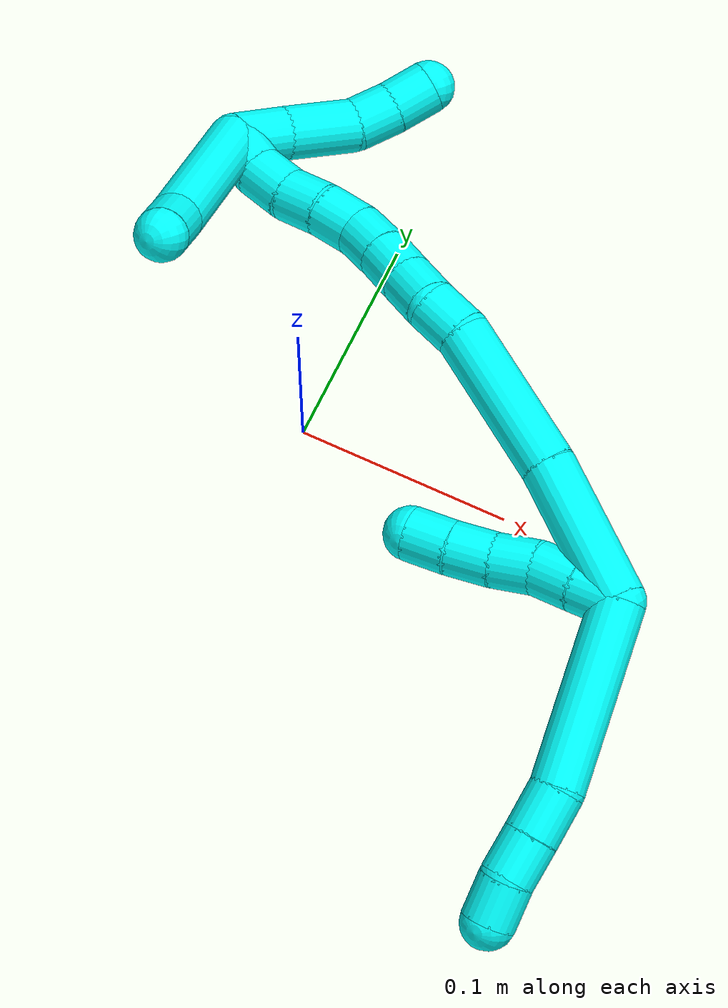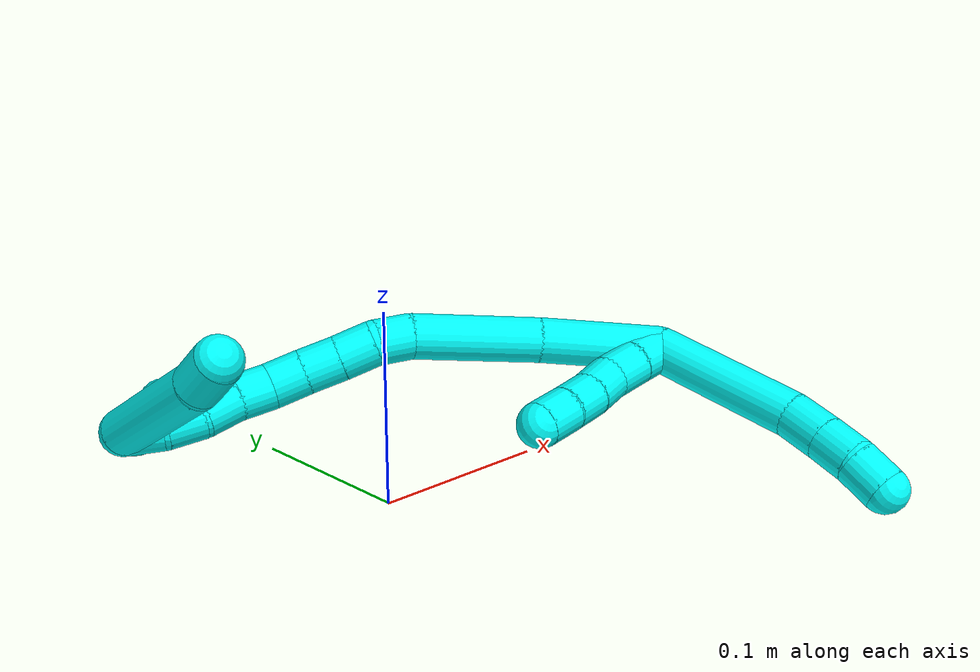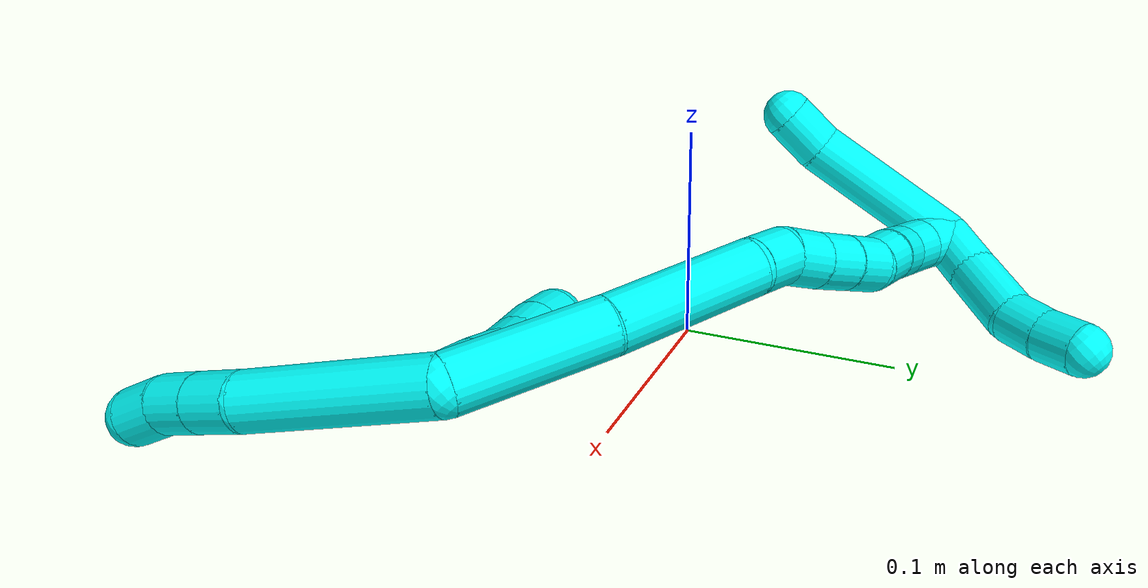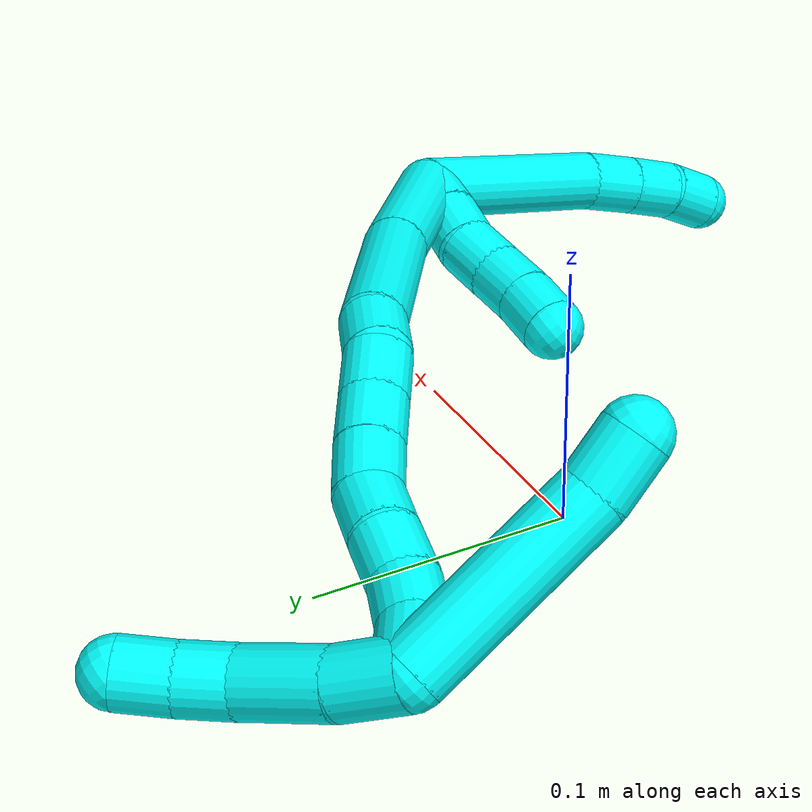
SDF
<sdf version="1.7">
 <world name="default">
  <model name="3">
   <static>0</static>
   <link name="3">
    <collision name="collision-cylinder-e_1_2_8">
     <pose>-0.009443 -0.033731 0.024603 0.940615 -0.222423 -0.113416</pose>
     <geometry><cylinder><radius>0.0125</radius><length>0.08561</length></cylinder></geometry>
     <surface>
      <friction><ode><mu>1.16</mu><mu2>1.16</mu2><slip1>0</slip1><slip2>0</slip2></ode></friction>
      <contact><ode><kp>1e+06</kp><kd>1</kd><max_vel>0</max_vel><min_depth>0.001</min_depth></ode></contact>
     </surface>
    </collision>
    <visual name="visual-cylinder-e_1_2_8">
     <pose>-0.009443 -0.033731 0.024603 0.940615 -0.222423 -0.113416</pose>
     <geometry><cylinder><radius>0.0125</radius><length>0.08561</length></cylinder></geometry>
     <material><ambient>0.003922 1 0.996078 1</ambient></material>
    </visual>
    <collision name="collision-cylinder-e_2_8_9">
     <pose>-0.023606 -0.075681 0.055848 0.891112 -0.420162 -0.202969</pose>
     <geometry><cylinder><radius>0.0125</radius><length>0.023148</length></cylinder></geometry>
     <surface>
      <friction><ode><mu>1.16</mu><mu2>1.16</mu2><slip1>0</slip1><slip2>0</slip2></ode></friction>
      <contact><ode><kp>1e+06</kp><kd>1</kd><max_vel>0</max_vel><min_depth>0.001</min_depth></ode></contact>
     </surface>
    </collision>
    <visual name="visual-cylinder-e_2_8_9">
     <pose>-0.023606 -0.075681 0.055848 0.891112 -0.420162 -0.202969</pose>
     <geometry><cylinder><radius>0.0125</radius><length>0.023148</length></cylinder></geometry>
     <material><ambient>0.003922 1 0.996078 1</ambient></material>
    </visual>
    <collision name="collision-cylinder-e_3_9_10">
     <pose>-0.032809 -0.091236 0.068315 0.899804 -0.446244 -0.218285</pose>
     <geometry><cylinder><radius>0.0125</radius><length>0.020768</length></cylinder></geometry>
     <surface>
      <friction><ode><mu>1.16</mu><mu2>1.16</mu2><slip1>0</slip1><slip2>0</slip2></ode></friction>
      <contact><ode><kp>1e+06</kp><kd>1</kd><max_vel>0</max_vel><min_depth>0.001</min_depth></ode></contact>
     </surface>
    </collision>
    <visual name="visual-cylinder-e_3_9_10">
     <pose>-0.032809 -0.091236 0.068315 0.899804 -0.446244 -0.218285</pose>
     <geometry><cylinder><radius>0.0125</radius><length>0.020768</length></cylinder></geometry>
     <material><ambient>0.003922 1 0.996078 1</ambient></material>
    </visual>
    <collision name="collision-cylinder-e_4_10_6">
     <pose>-0.041725 -0.106939 0.078031 1.13536 -0.447981 -0.288533</pose>
     <geometry><cylinder><radius>0.0125</radius><length>0.020474</length></cylinder></geometry>
     <surface>
      <friction><ode><mu>1.16</mu><mu2>1.16</mu2><slip1>0</slip1><slip2>0</slip2></ode></friction>
      <contact><ode><kp>1e+06</kp><kd>1</kd><max_vel>0</max_vel><min_depth>0.001</min_depth></ode></contact>
     </surface>
    </collision>
    <visual name="visual-cylinder-e_4_10_6">
     <pose>-0.041725 -0.106939 0.078031 1.13536 -0.447981 -0.288533</pose>
     <geometry><cylinder><radius>0.0125</radius><length>0.020474</length></cylinder></geometry>
     <material><ambient>0.003922 1 0.996078 1</ambient></material>
    </visual>
    <collision name="collision-cylinder-e_1_2_11">
     <pose>-0.009066 0.004212 0.000262 -1.50873 -1.13515 1.0796</pose>
     <geometry><cylinder><radius>0.0125</radius><length>0.02</length></cylinder></geometry>
     <surface>
      <friction><ode><mu>1.16</mu><mu2>1.16</mu2><slip1>0</slip1><slip2>0</slip2></ode></friction>
      <contact><ode><kp>1e+06</kp><kd>1</kd><max_vel>0</max_vel><min_depth>0.001</min_depth></ode></contact>
     </surface>
    </collision>
    <visual name="visual-cylinder-e_1_2_11">
     <pose>-0.009066 0.004212 0.000262 -1.50873 -1.13515 1.0796</pose>
     <geometry><cylinder><radius>0.0125</radius><length>0.02</length></cylinder></geometry>
     <material><ambient>0.003922 1 0.996078 1</ambient></material>
    </visual>
    <collision name="collision-cylinder-e_2_11_12">
     <pose>-0.027242 0.012539 0.000263 -1.63402 -1.14578 1.20414</pose>
     <geometry><cylinder><radius>0.0125</radius><length>0.02</length></cylinder></geometry>
     <surface>
      <friction><ode><mu>1.16</mu><mu2>1.16</mu2><slip1>0</slip1><slip2>0</slip2></ode></friction>
      <contact><ode><kp>1e+06</kp><kd>1</kd><max_vel>0</max_vel><min_depth>0.001</min_depth></ode></contact>
     </surface>
    </collision>
    <visual name="visual-cylinder-e_2_11_12">
     <pose>-0.027242 0.012539 0.000263 -1.63402 -1.14578 1.20414</pose>
     <geometry><cylinder><radius>0.0125</radius><length>0.02</length></cylinder></geometry>
     <material><ambient>0.003922 1 0.996078 1</ambient></material>
    </visual>
    <collision name="collision-cylinder-e_3_12_13">
     <pose>-0.045797 0.019409 0.001796 -0.993605 -1.23579 0.735598</pose>
     <geometry><cylinder><radius>0.0125</radius><length>0.02</length></cylinder></geometry>
     <surface>
      <friction><ode><mu>1.16</mu><mu2>1.16</mu2><slip1>0</slip1><slip2>0</slip2></ode></friction>
      <contact><ode><kp>1e+06</kp><kd>1</kd><max_vel>0</max_vel><min_depth>0.001</min_depth></ode></contact>
     </surface>
    </collision>
    <visual name="visual-cylinder-e_3_12_13">
     <pose>-0.045797 0.019409 0.001796 -0.993605 -1.23579 0.735598</pose>
     <geometry><cylinder><radius>0.0125</radius><length>0.02</length></cylinder></geometry>
     <material><ambient>0.003922 1 0.996078 1</ambient></material>
    </visual>
    <collision name="collision-cylinder-e_4_13_14">
     <pose>-0.064332 0.025922 0.005386 -1.12502 -1.14126 0.769036</pose>
     <geometry><cylinder><radius>0.0125</radius><length>0.02</length></cylinder></geometry>
     <surface>
      <friction><ode><mu>1.16</mu><mu2>1.16</mu2><slip1>0</slip1><slip2>0</slip2></ode></friction>
      <contact><ode><kp>1e+06</kp><kd>1</kd><max_vel>0</max_vel><min_depth>0.001</min_depth></ode></contact>
     </surface>
    </collision>
    <visual name="visual-cylinder-e_4_13_14">
     <pose>-0.064332 0.025922 0.005386 -1.12502 -1.14126 0.769036</pose>
     <geometry><cylinder><radius>0.0125</radius><length>0.02</length></cylinder></geometry>
     <material><ambient>0.003922 1 0.996078 1</ambient></material>
    </visual>
    <collision name="collision-cylinder-e_5_14_5">
     <pose>-0.082524 0.033717 0.008124 -1.34148 -1.14321 0.943832</pose>
     <geometry><cylinder><radius>0.0125</radius><length>0.02</length></cylinder></geometry>
     <surface>
      <friction><ode><mu>1.16</mu><mu2>1.16</mu2><slip1>0</slip1><slip2>0</slip2></ode></friction>
      <contact><ode><kp>1e+06</kp><kd>1</kd><max_vel>0</max_vel><min_depth>0.001</min_depth></ode></contact>
     </surface>
    </collision>
    <visual name="visual-cylinder-e_5_14_5">
     <pose>-0.082524 0.033717 0.008124 -1.34148 -1.14321 0.943832</pose>
     <geometry><cylinder><radius>0.0125</radius><length>0.02</length></cylinder></geometry>
     <material><ambient>0.003922 1 0.996078 1</ambient></material>
    </visual>
    <collision name="collision-cylinder-e_1_2_15">
     <pose>-0.015937 0.028645 -0.00894 -1.87333 -0.488225 0.653093</pose>
     <geometry><cylinder><radius>0.0125</radius><length>0.067955</length></cylinder></geometry>
     <surface>
      <friction><ode><mu>1.16</mu><mu2>1.16</mu2><slip1>0</slip1><slip2>0</slip2></ode></friction>
      <contact><ode><kp>1e+06</kp><kd>1</kd><max_vel>0</max_vel><min_depth>0.001</min_depth></ode></contact>
     </surface>
    </collision>
    <visual name="visual-cylinder-e_1_2_15">
     <pose>-0.015937 0.028645 -0.00894 -1.87333 -0.488225 0.653093</pose>
     <geometry><cylinder><radius>0.0125</radius><length>0.067955</length></cylinder></geometry>
     <material><ambient>0.003922 1 0.996078 1</ambient></material>
    </visual>
    <collision name="collision-cylinder-e_2_15_16">
     <pose>-0.05106 0.086392 -0.025081 -1.81333 -0.569273 0.715414</pose>
     <geometry><cylinder><radius>0.0125</radius><length>0.071185</length></cylinder></geometry>
     <surface>
      <friction><ode><mu>1.16</mu><mu2>1.16</mu2><slip1>0</slip1><slip2>0</slip2></ode></friction>
      <contact><ode><kp>1e+06</kp><kd>1</kd><max_vel>0</max_vel><min_depth>0.001</min_depth></ode></contact>
     </surface>
    </collision>
    <visual name="visual-cylinder-e_2_15_16">
     <pose>-0.05106 0.086392 -0.025081 -1.81333 -0.569273 0.715414</pose>
     <geometry><cylinder><radius>0.0125</radius><length>0.071185</length></cylinder></geometry>
     <material><ambient>0.003922 1 0.996078 1</ambient></material>
    </visual>
    <collision name="collision-cylinder-e_3_16_17">
     <pose>-0.077732 0.122262 -0.033775 -1.78809 -0.823951 0.996419</pose>
     <geometry><cylinder><radius>0.0125</radius><length>0.020405</length></cylinder></geometry>
     <surface>
      <friction><ode><mu>1.16</mu><mu2>1.16</mu2><slip1>0</slip1><slip2>0</slip2></ode></friction>
      <contact><ode><kp>1e+06</kp><kd>1</kd><max_vel>0</max_vel><min_depth>0.001</min_depth></ode></contact>
     </surface>
    </collision>
    <visual name="visual-cylinder-e_3_16_17">
     <pose>-0.077732 0.122262 -0.033775 -1.78809 -0.823951 0.996419</pose>
     <geometry><cylinder><radius>0.0125</radius><length>0.020405</length></cylinder></geometry>
     <material><ambient>0.003922 1 0.996078 1</ambient></material>
    </visual>
    <collision name="collision-cylinder-e_4_17_18">
     <pose>-0.09276 0.134092 -0.03972 -2.29207 -0.8414 1.55994</pose>
     <geometry><cylinder><radius>0.0125</radius><length>0.02023</length></cylinder></geometry>
     <surface>
      <friction><ode><mu>1.16</mu><mu2>1.16</mu2><slip1>0</slip1><slip2>0</slip2></ode></friction>
      <contact><ode><kp>1e+06</kp><kd>1</kd><max_vel>0</max_vel><min_depth>0.001</min_depth></ode></contact>
     </surface>
    </collision>
    <visual name="visual-cylinder-e_4_17_18">
     <pose>-0.09276 0.134092 -0.03972 -2.29207 -0.8414 1.55994</pose>
     <geometry><cylinder><radius>0.0125</radius><length>0.02023</length></cylinder></geometry>
     <material><ambient>0.003922 1 0.996078 1</ambient></material>
    </visual>
    <collision name="collision-cylinder-e_5_18_19">
     <pose>-0.10771 0.144499 -0.048316 -2.23035 -0.830831 1.46581</pose>
     <geometry><cylinder><radius>0.0125</radius><length>0.020062</length></cylinder></geometry>
     <surface>
      <friction><ode><mu>1.16</mu><mu2>1.16</mu2><slip1>0</slip1><slip2>0</slip2></ode></friction>
      <contact><ode><kp>1e+06</kp><kd>1</kd><max_vel>0</max_vel><min_depth>0.001</min_depth></ode></contact>
     </surface>
    </collision>
    <visual name="visual-cylinder-e_5_18_19">
     <pose>-0.10771 0.144499 -0.048316 -2.23035 -0.830831 1.46581</pose>
     <geometry><cylinder><radius>0.0125</radius><length>0.020062</length></cylinder></geometry>
     <material><ambient>0.003922 1 0.996078 1</ambient></material>
    </visual>
    <collision name="collision-cylinder-e_6_19_20">
     <pose>-0.122897 0.154939 -0.056284 -2.21453 -0.88468 1.51696</pose>
     <geometry><cylinder><radius>0.0125</radius><length>0.020108</length></cylinder></geometry>
     <surface>
      <friction><ode><mu>1.16</mu><mu2>1.16</mu2><slip1>0</slip1><slip2>0</slip2></ode></friction>
      <contact><ode><kp>1e+06</kp><kd>1</kd><max_vel>0</max_vel><min_depth>0.001</min_depth></ode></contact>
     </surface>
    </collision>
    <visual name="visual-cylinder-e_6_19_20">
     <pose>-0.122897 0.154939 -0.056284 -2.21453 -0.88468 1.51696</pose>
     <geometry><cylinder><radius>0.0125</radius><length>0.020108</length></cylinder></geometry>
     <material><ambient>0.003922 1 0.996078 1</ambient></material>
    </visual>
    <collision name="collision-cylinder-e_7_20_21">
     <pose>-0.139082 0.165437 -0.060631 -1.6676 -0.997371 1.0809</pose>
     <geometry><cylinder><radius>0.0125</radius><length>0.020014</length></cylinder></geometry>
     <surface>
      <friction><ode><mu>1.16</mu><mu2>1.16</mu2><slip1>0</slip1><slip2>0</slip2></ode></friction>
      <contact><ode><kp>1e+06</kp><kd>1</kd><max_vel>0</max_vel><min_depth>0.001</min_depth></ode></contact>
     </surface>
    </collision>
    <visual name="visual-cylinder-e_7_20_21">
     <pose>-0.139082 0.165437 -0.060631 -1.6676 -0.997371 1.0809</pose>
     <geometry><cylinder><radius>0.0125</radius><length>0.020014</length></cylinder></geometry>
     <material><ambient>0.003922 1 0.996078 1</ambient></material>
    </visual>
    <collision name="collision-cylinder-e_8_21_22">
     <pose>-0.156555 0.175027 -0.061954 -1.75919 -1.13132 1.309</pose>
     <geometry><cylinder><radius>0.0125</radius><length>0.020036</length></cylinder></geometry>
     <surface>
      <friction><ode><mu>1.16</mu><mu2>1.16</mu2><slip1>0</slip1><slip2>0</slip2></ode></friction>
      <contact><ode><kp>1e+06</kp><kd>1</kd><max_vel>0</max_vel><min_depth>0.001</min_depth></ode></contact>
     </surface>
    </collision>
    <visual name="visual-cylinder-e_8_21_22">
     <pose>-0.156555 0.175027 -0.061954 -1.75919 -1.13132 1.309</pose>
     <geometry><cylinder><radius>0.0125</radius><length>0.020036</length></cylinder></geometry>
     <material><ambient>0.003922 1 0.996078 1</ambient></material>
    </visual>
    <collision name="collision-cylinder-e_9_22_23">
     <pose>-0.173584 0.185074 -0.064258 -1.82232 -0.921073 1.13823</pose>
     <geometry><cylinder><radius>0.0125</radius><length>0.020002</length></cylinder></geometry>
     <surface>
      <friction><ode><mu>1.16</mu><mu2>1.16</mu2><slip1>0</slip1><slip2>0</slip2></ode></friction>
      <contact><ode><kp>1e+06</kp><kd>1</kd><max_vel>0</max_vel><min_depth>0.001</min_depth></ode></contact>
     </surface>
    </collision>
    <visual name="visual-cylinder-e_9_22_23">
     <pose>-0.173584 0.185074 -0.064258 -1.82232 -0.921073 1.13823</pose>
     <geometry><cylinder><radius>0.0125</radius><length>0.020002</length></cylinder></geometry>
     <material><ambient>0.003922 1 0.996078 1</ambient></material>
    </visual>
    <collision name="collision-cylinder-e_10_23_1">
     <pose>-0.187989 0.198126 -0.068375 -1.91911 -0.69976 0.960146</pose>
     <geometry><cylinder><radius>0.0125</radius><length>0.020002</length></cylinder></geometry>
     <surface>
      <friction><ode><mu>1.16</mu><mu2>1.16</mu2><slip1>0</slip1><slip2>0</slip2></ode></friction>
      <contact><ode><kp>1e+06</kp><kd>1</kd><max_vel>0</max_vel><min_depth>0.001</min_depth></ode></contact>
     </surface>
    </collision>
    <visual name="visual-cylinder-e_10_23_1">
     <pose>-0.187989 0.198126 -0.068375 -1.91911 -0.69976 0.960146</pose>
     <geometry><cylinder><radius>0.0125</radius><length>0.020002</length></cylinder></geometry>
     <material><ambient>0.003922 1 0.996078 1</ambient></material>
    </visual>
    <collision name="collision-cylinder-e_1_1_24">
     <pose>-0.188769 0.196085 -0.033785 0.243234 0.14663 0.017953</pose>
     <geometry><cylinder><radius>0.0125</radius><length>0.077492</length></cylinder></geometry>
     <surface>
      <friction><ode><mu>1.16</mu><mu2>1.16</mu2><slip1>0</slip1><slip2>0</slip2></ode></friction>
      <contact><ode><kp>1e+06</kp><kd>1</kd><max_vel>0</max_vel><min_depth>0.001</min_depth></ode></contact>
     </surface>
    </collision>
    <visual name="visual-cylinder-e_1_1_24">
     <pose>-0.188769 0.196085 -0.033785 0.243234 0.14663 0.017953</pose>
     <geometry><cylinder><radius>0.0125</radius><length>0.077492</length></cylinder></geometry>
     <material><ambient>0.003922 1 0.996078 1</ambient></material>
    </visual>
    <collision name="collision-cylinder-e_2_24_4">
     <pose>-0.179812 0.185965 0.014141 0.082673 0.297158 0.012382</pose>
     <geometry><cylinder><radius>0.0125</radius><length>0.022508</length></cylinder></geometry>
     <surface>
      <friction><ode><mu>1.16</mu><mu2>1.16</mu2><slip1>0</slip1><slip2>0</slip2></ode></friction>
      <contact><ode><kp>1e+06</kp><kd>1</kd><max_vel>0</max_vel><min_depth>0.001</min_depth></ode></contact>
     </surface>
    </collision>
    <visual name="visual-cylinder-e_2_24_4">
     <pose>-0.179812 0.185965 0.014141 0.082673 0.297158 0.012382</pose>
     <geometry><cylinder><radius>0.0125</radius><length>0.022508</length></cylinder></geometry>
     <material><ambient>0.003922 1 0.996078 1</ambient></material>
    </visual>
    <collision name="collision-cylinder-e_1_1_25">
     <pose>-0.188221 0.20355 -0.08196 2.98195 0.50944 2.54547</pose>
     <geometry><cylinder><radius>0.0125</radius><length>0.025462</length></cylinder></geometry>
     <surface>
      <friction><ode><mu>1.16</mu><mu2>1.16</mu2><slip1>0</slip1><slip2>0</slip2></ode></friction>
      <contact><ode><kp>1e+06</kp><kd>1</kd><max_vel>0</max_vel><min_depth>0.001</min_depth></ode></contact>
     </surface>
    </collision>
    <visual name="visual-cylinder-e_1_1_25">
     <pose>-0.188221 0.20355 -0.08196 2.98195 0.50944 2.54547</pose>
     <geometry><cylinder><radius>0.0125</radius><length>0.025462</length></cylinder></geometry>
     <material><ambient>0.003922 1 0.996078 1</ambient></material>
    </visual>
    <collision name="collision-cylinder-e_2_25_26">
     <pose>-0.171639 0.199354 -0.106428 2.96348 0.647676 2.62158</pose>
     <geometry><cylinder><radius>0.0125</radius><length>0.034387</length></cylinder></geometry>
     <surface>
      <friction><ode><mu>1.16</mu><mu2>1.16</mu2><slip1>0</slip1><slip2>0</slip2></ode></friction>
      <contact><ode><kp>1e+06</kp><kd>1</kd><max_vel>0</max_vel><min_depth>0.001</min_depth></ode></contact>
     </surface>
    </collision>
    <visual name="visual-cylinder-e_2_25_26">
     <pose>-0.171639 0.199354 -0.106428 2.96348 0.647676 2.62158</pose>
     <geometry><cylinder><radius>0.0125</radius><length>0.034387</length></cylinder></geometry>
     <material><ambient>0.003922 1 0.996078 1</ambient></material>
    </visual>
    <collision name="collision-cylinder-e_3_26_27">
     <pose>-0.154896 0.198622 -0.127485 -2.92083 0.687884 -2.54141</pose>
     <geometry><cylinder><radius>0.0125</radius><length>0.020065</length></cylinder></geometry>
     <surface>
      <friction><ode><mu>1.16</mu><mu2>1.16</mu2><slip1>0</slip1><slip2>0</slip2></ode></friction>
      <contact><ode><kp>1e+06</kp><kd>1</kd><max_vel>0</max_vel><min_depth>0.001</min_depth></ode></contact>
     </surface>
    </collision>
    <visual name="visual-cylinder-e_3_26_27">
     <pose>-0.154896 0.198622 -0.127485 -2.92083 0.687884 -2.54141</pose>
     <geometry><cylinder><radius>0.0125</radius><length>0.020065</length></cylinder></geometry>
     <material><ambient>0.003922 1 0.996078 1</ambient></material>
    </visual>
    <collision name="collision-cylinder-e_4_27_3">
     <pose>-0.141915 0.203 -0.142117 -2.77909 0.718501 -2.23362</pose>
     <geometry><cylinder><radius>0.0125</radius><length>0.020086</length></cylinder></geometry>
     <surface>
      <friction><ode><mu>1.16</mu><mu2>1.16</mu2><slip1>0</slip1><slip2>0</slip2></ode></friction>
      <contact><ode><kp>1e+06</kp><kd>1</kd><max_vel>0</max_vel><min_depth>0.001</min_depth></ode></contact>
     </surface>
    </collision>
    <visual name="visual-cylinder-e_4_27_3">
     <pose>-0.141915 0.203 -0.142117 -2.77909 0.718501 -2.23362</pose>
     <geometry><cylinder><radius>0.0125</radius><length>0.020086</length></cylinder></geometry>
     <material><ambient>0.003922 1 0.996078 1</ambient></material>
    </visual>
    <collision name="collision-sphere-3">
     <pose>-0.135304 0.205681 -0.149186 0 -0 0</pose>
     <geometry><sphere><radius>0.0125</radius></sphere></geometry>
     <surface>
      <friction><ode><mu>1.16</mu><mu2>1.16</mu2><slip1>0</slip1><slip2>0</slip2></ode></friction>
      <contact><ode><kp>1e+06</kp><kd>1</kd><max_vel>0</max_vel><min_depth>0.001</min_depth></ode></contact>
     </surface>
    </collision>
    <visual name="visual-sphere-3">
     <pose>-0.135304 0.205681 -0.149186 0 -0 0</pose>
     <geometry><sphere><radius>0.0125</radius></sphere></geometry>
     <material><ambient>0.003922 1 0.996078 1</ambient></material>
    </visual>
    <collision name="collision-sphere-27">
     <pose>-0.148526 0.200319 -0.135048 0 -0 0</pose>
     <geometry><sphere><radius>0.0125</radius></sphere></geometry>
     <surface>
      <friction><ode><mu>1.16</mu><mu2>1.16</mu2><slip1>0</slip1><slip2>0</slip2></ode></friction>
      <contact><ode><kp>1e+06</kp><kd>1</kd><max_vel>0</max_vel><min_depth>0.001</min_depth></ode></contact>
     </surface>
    </collision>
    <visual name="visual-sphere-27">
     <pose>-0.148526 0.200319 -0.135048 0 -0 0</pose>
     <geometry><sphere><radius>0.0125</radius></sphere></geometry>
     <material><ambient>0.003922 1 0.996078 1</ambient></material>
    </visual>
    <collision name="collision-sphere-26">
     <pose>-0.161265 0.196925 -0.119922 0 -0 0</pose>
     <geometry><sphere><radius>0.0125</radius></sphere></geometry>
     <surface>
      <friction><ode><mu>1.16</mu><mu2>1.16</mu2><slip1>0</slip1><slip2>0</slip2></ode></friction>
      <contact><ode><kp>1e+06</kp><kd>1</kd><max_vel>0</max_vel><min_depth>0.001</min_depth></ode></contact>
     </surface>
    </collision>
    <visual name="visual-sphere-26">
     <pose>-0.161265 0.196925 -0.119922 0 -0 0</pose>
     <geometry><sphere><radius>0.0125</radius></sphere></geometry>
     <material><ambient>0.003922 1 0.996078 1</ambient></material>
    </visual>
    <collision name="collision-sphere-25">
     <pose>-0.182012 0.201783 -0.092933 0 -0 0</pose>
     <geometry><sphere><radius>0.0125</radius></sphere></geometry>
     <surface>
      <friction><ode><mu>1.16</mu><mu2>1.16</mu2><slip1>0</slip1><slip2>0</slip2></ode></friction>
      <contact><ode><kp>1e+06</kp><kd>1</kd><max_vel>0</max_vel><min_depth>0.001</min_depth></ode></contact>
     </surface>
    </collision>
    <visual name="visual-sphere-25">
     <pose>-0.182012 0.201783 -0.092933 0 -0 0</pose>
     <geometry><sphere><radius>0.0125</radius></sphere></geometry>
     <material><ambient>0.003922 1 0.996078 1</ambient></material>
    </visual>
    <collision name="collision-sphere-4">
     <pose>-0.176517 0.185077 0.024865 0 -0 0</pose>
     <geometry><sphere><radius>0.0125</radius></sphere></geometry>
     <surface>
      <friction><ode><mu>1.16</mu><mu2>1.16</mu2><slip1>0</slip1><slip2>0</slip2></ode></friction>
      <contact><ode><kp>1e+06</kp><kd>1</kd><max_vel>0</max_vel><min_depth>0.001</min_depth></ode></contact>
     </surface>
    </collision>
    <visual name="visual-sphere-4">
     <pose>-0.176517 0.185077 0.024865 0 -0 0</pose>
     <geometry><sphere><radius>0.0125</radius></sphere></geometry>
     <material><ambient>0.003922 1 0.996078 1</ambient></material>
    </visual>
    <collision name="collision-sphere-24">
     <pose>-0.183108 0.186854 0.003418 0 -0 0</pose>
     <geometry><sphere><radius>0.0125</radius></sphere></geometry>
     <surface>
      <friction><ode><mu>1.16</mu><mu2>1.16</mu2><slip1>0</slip1><slip2>0</slip2></ode></friction>
      <contact><ode><kp>1e+06</kp><kd>1</kd><max_vel>0</max_vel><min_depth>0.001</min_depth></ode></contact>
     </surface>
    </collision>
    <visual name="visual-sphere-24">
     <pose>-0.183108 0.186854 0.003418 0 -0 0</pose>
     <geometry><sphere><radius>0.0125</radius></sphere></geometry>
     <material><ambient>0.003922 1 0.996078 1</ambient></material>
    </visual>
    <collision name="collision-sphere-1">
     <pose>-0.19443 0.205317 -0.070987 0 -0 0</pose>
     <geometry><sphere><radius>0.0125</radius></sphere></geometry>
     <surface>
      <friction><ode><mu>1.16</mu><mu2>1.16</mu2><slip1>0</slip1><slip2>0</slip2></ode></friction>
      <contact><ode><kp>1e+06</kp><kd>1</kd><max_vel>0</max_vel><min_depth>0.001</min_depth></ode></contact>
     </surface>
    </collision>
    <visual name="visual-sphere-1">
     <pose>-0.19443 0.205317 -0.070987 0 -0 0</pose>
     <geometry><sphere><radius>0.0125</radius></sphere></geometry>
     <material><ambient>0.003922 1 0.996078 1</ambient></material>
    </visual>
    <collision name="collision-sphere-23">
     <pose>-0.181548 0.190934 -0.065764 0 -0 0</pose>
     <geometry><sphere><radius>0.0125</radius></sphere></geometry>
     <surface>
      <friction><ode><mu>1.16</mu><mu2>1.16</mu2><slip1>0</slip1><slip2>0</slip2></ode></friction>
      <contact><ode><kp>1e+06</kp><kd>1</kd><max_vel>0</max_vel><min_depth>0.001</min_depth></ode></contact>
     </surface>
    </collision>
    <visual name="visual-sphere-23">
     <pose>-0.181548 0.190934 -0.065764 0 -0 0</pose>
     <geometry><sphere><radius>0.0125</radius></sphere></geometry>
     <material><ambient>0.003922 1 0.996078 1</ambient></material>
    </visual>
    <collision name="collision-sphere-22">
     <pose>-0.165621 0.179215 -0.062753 0 -0 0</pose>
     <geometry><sphere><radius>0.0125</radius></sphere></geometry>
     <surface>
      <friction><ode><mu>1.16</mu><mu2>1.16</mu2><slip1>0</slip1><slip2>0</slip2></ode></friction>
      <contact><ode><kp>1e+06</kp><kd>1</kd><max_vel>0</max_vel><min_depth>0.001</min_depth></ode></contact>
     </surface>
    </collision>
    <visual name="visual-sphere-22">
     <pose>-0.165621 0.179215 -0.062753 0 -0 0</pose>
     <geometry><sphere><radius>0.0125</radius></sphere></geometry>
     <material><ambient>0.003922 1 0.996078 1</ambient></material>
    </visual>
    <collision name="collision-sphere-21">
     <pose>-0.147488 0.17084 -0.061156 0 -0 0</pose>
     <geometry><sphere><radius>0.0125</radius></sphere></geometry>
     <surface>
      <friction><ode><mu>1.16</mu><mu2>1.16</mu2><slip1>0</slip1><slip2>0</slip2></ode></friction>
      <contact><ode><kp>1e+06</kp><kd>1</kd><max_vel>0</max_vel><min_depth>0.001</min_depth></ode></contact>
     </surface>
    </collision>
    <visual name="visual-sphere-21">
     <pose>-0.147488 0.17084 -0.061156 0 -0 0</pose>
     <geometry><sphere><radius>0.0125</radius></sphere></geometry>
     <material><ambient>0.003922 1 0.996078 1</ambient></material>
    </visual>
    <collision name="collision-sphere-11">
     <pose>-0.018132 0.008424 0.000523 0 -0 0</pose>
     <geometry><sphere><radius>0.0125</radius></sphere></geometry>
     <surface>
      <friction><ode><mu>1.16</mu><mu2>1.16</mu2><slip1>0</slip1><slip2>0</slip2></ode></friction>
      <contact><ode><kp>1e+06</kp><kd>1</kd><max_vel>0</max_vel><min_depth>0.001</min_depth></ode></contact>
     </surface>
    </collision>
    <visual name="visual-sphere-11">
     <pose>-0.018132 0.008424 0.000523 0 -0 0</pose>
     <geometry><sphere><radius>0.0125</radius></sphere></geometry>
     <material><ambient>0.003922 1 0.996078 1</ambient></material>
    </visual>
    <collision name="collision-sphere-6">
     <pose>-0.046159 -0.115305 0.081923 0 -0 0</pose>
     <geometry><sphere><radius>0.0125</radius></sphere></geometry>
     <surface>
      <friction><ode><mu>1.16</mu><mu2>1.16</mu2><slip1>0</slip1><slip2>0</slip2></ode></friction>
      <contact><ode><kp>1e+06</kp><kd>1</kd><max_vel>0</max_vel><min_depth>0.001</min_depth></ode></contact>
     </surface>
    </collision>
    <visual name="visual-sphere-6">
     <pose>-0.046159 -0.115305 0.081923 0 -0 0</pose>
     <geometry><sphere><radius>0.0125</radius></sphere></geometry>
     <material><ambient>0.003922 1 0.996078 1</ambient></material>
    </visual>
    <collision name="collision-sphere-10">
     <pose>-0.03729 -0.098573 0.074139 0 -0 0</pose>
     <geometry><sphere><radius>0.0125</radius></sphere></geometry>
     <surface>
      <friction><ode><mu>1.16</mu><mu2>1.16</mu2><slip1>0</slip1><slip2>0</slip2></ode></friction>
      <contact><ode><kp>1e+06</kp><kd>1</kd><max_vel>0</max_vel><min_depth>0.001</min_depth></ode></contact>
     </surface>
    </collision>
    <visual name="visual-sphere-10">
     <pose>-0.03729 -0.098573 0.074139 0 -0 0</pose>
     <geometry><sphere><radius>0.0125</radius></sphere></geometry>
     <material><ambient>0.003922 1 0.996078 1</ambient></material>
    </visual>
    <collision name="collision-sphere-9">
     <pose>-0.028327 -0.0839 0.06249 0 -0 0</pose>
     <geometry><sphere><radius>0.0125</radius></sphere></geometry>
     <surface>
      <friction><ode><mu>1.16</mu><mu2>1.16</mu2><slip1>0</slip1><slip2>0</slip2></ode></friction>
      <contact><ode><kp>1e+06</kp><kd>1</kd><max_vel>0</max_vel><min_depth>0.001</min_depth></ode></contact>
     </surface>
    </collision>
    <visual name="visual-sphere-9">
     <pose>-0.028327 -0.0839 0.06249 0 -0 0</pose>
     <geometry><sphere><radius>0.0125</radius></sphere></geometry>
     <material><ambient>0.003922 1 0.996078 1</ambient></material>
    </visual>
    <collision name="collision-sphere-2">
     <geometry><sphere><radius>0.0125</radius></sphere></geometry>
     <surface>
      <friction><ode><mu>1.16</mu><mu2>1.16</mu2><slip1>0</slip1><slip2>0</slip2></ode></friction>
      <contact><ode><kp>1e+06</kp><kd>1</kd><max_vel>0</max_vel><min_depth>0.001</min_depth></ode></contact>
     </surface>
    </collision>
    <visual name="visual-sphere-2">
     <geometry><sphere><radius>0.0125</radius></sphere></geometry>
     <material><ambient>0.003922 1 0.996078 1</ambient></material>
    </visual>
    <collision name="collision-sphere-19">
     <pose>-0.115118 0.149844 -0.05246 0 -0 0</pose>
     <geometry><sphere><radius>0.0125</radius></sphere></geometry>
     <surface>
      <friction><ode><mu>1.16</mu><mu2>1.16</mu2><slip1>0</slip1><slip2>0</slip2></ode></friction>
      <contact><ode><kp>1e+06</kp><kd>1</kd><max_vel>0</max_vel><min_depth>0.001</min_depth></ode></contact>
     </surface>
    </collision>
    <visual name="visual-sphere-19">
     <pose>-0.115118 0.149844 -0.05246 0 -0 0</pose>
     <geometry><sphere><radius>0.0125</radius></sphere></geometry>
     <material><ambient>0.003922 1 0.996078 1</ambient></material>
    </visual>
    <collision name="collision-sphere-8">
     <pose>-0.018885 -0.067462 0.049206 0 -0 0</pose>
     <geometry><sphere><radius>0.0125</radius></sphere></geometry>
     <surface>
      <friction><ode><mu>1.16</mu><mu2>1.16</mu2><slip1>0</slip1><slip2>0</slip2></ode></friction>
      <contact><ode><kp>1e+06</kp><kd>1</kd><max_vel>0</max_vel><min_depth>0.001</min_depth></ode></contact>
     </surface>
    </collision>
    <visual name="visual-sphere-8">
     <pose>-0.018885 -0.067462 0.049206 0 -0 0</pose>
     <geometry><sphere><radius>0.0125</radius></sphere></geometry>
     <material><ambient>0.003922 1 0.996078 1</ambient></material>
    </visual>
    <collision name="collision-sphere-12">
     <pose>-0.036353 0.016654 2e-06 0 -0 0</pose>
     <geometry><sphere><radius>0.0125</radius></sphere></geometry>
     <surface>
      <friction><ode><mu>1.16</mu><mu2>1.16</mu2><slip1>0</slip1><slip2>0</slip2></ode></friction>
      <contact><ode><kp>1e+06</kp><kd>1</kd><max_vel>0</max_vel><min_depth>0.001</min_depth></ode></contact>
     </surface>
    </collision>
    <visual name="visual-sphere-12">
     <pose>-0.036353 0.016654 2e-06 0 -0 0</pose>
     <geometry><sphere><radius>0.0125</radius></sphere></geometry>
     <material><ambient>0.003922 1 0.996078 1</ambient></material>
    </visual>
    <collision name="collision-sphere-13">
     <pose>-0.055241 0.022164 0.00359 0 -0 0</pose>
     <geometry><sphere><radius>0.0125</radius></sphere></geometry>
     <surface>
      <friction><ode><mu>1.16</mu><mu2>1.16</mu2><slip1>0</slip1><slip2>0</slip2></ode></friction>
      <contact><ode><kp>1e+06</kp><kd>1</kd><max_vel>0</max_vel><min_depth>0.001</min_depth></ode></contact>
     </surface>
    </collision>
    <visual name="visual-sphere-13">
     <pose>-0.055241 0.022164 0.00359 0 -0 0</pose>
     <geometry><sphere><radius>0.0125</radius></sphere></geometry>
     <material><ambient>0.003922 1 0.996078 1</ambient></material>
    </visual>
    <collision name="collision-sphere-14">
     <pose>-0.073424 0.029679 0.007182 0 -0 0</pose>
     <geometry><sphere><radius>0.0125</radius></sphere></geometry>
     <surface>
      <friction><ode><mu>1.16</mu><mu2>1.16</mu2><slip1>0</slip1><slip2>0</slip2></ode></friction>
      <contact><ode><kp>1e+06</kp><kd>1</kd><max_vel>0</max_vel><min_depth>0.001</min_depth></ode></contact>
     </surface>
    </collision>
    <visual name="visual-sphere-14">
     <pose>-0.073424 0.029679 0.007182 0 -0 0</pose>
     <geometry><sphere><radius>0.0125</radius></sphere></geometry>
     <material><ambient>0.003922 1 0.996078 1</ambient></material>
    </visual>
    <collision name="collision-sphere-5">
     <pose>-0.091623 0.037756 0.009067 0 -0 0</pose>
     <geometry><sphere><radius>0.0125</radius></sphere></geometry>
     <surface>
      <friction><ode><mu>1.16</mu><mu2>1.16</mu2><slip1>0</slip1><slip2>0</slip2></ode></friction>
      <contact><ode><kp>1e+06</kp><kd>1</kd><max_vel>0</max_vel><min_depth>0.001</min_depth></ode></contact>
     </surface>
    </collision>
    <visual name="visual-sphere-5">
     <pose>-0.091623 0.037756 0.009067 0 -0 0</pose>
     <geometry><sphere><radius>0.0125</radius></sphere></geometry>
     <material><ambient>0.003922 1 0.996078 1</ambient></material>
    </visual>
    <collision name="collision-sphere-15">
     <pose>-0.031875 0.05729 -0.017881 0 -0 0</pose>
     <geometry><sphere><radius>0.0125</radius></sphere></geometry>
     <surface>
      <friction><ode><mu>1.16</mu><mu2>1.16</mu2><slip1>0</slip1><slip2>0</slip2></ode></friction>
      <contact><ode><kp>1e+06</kp><kd>1</kd><max_vel>0</max_vel><min_depth>0.001</min_depth></ode></contact>
     </surface>
    </collision>
    <visual name="visual-sphere-15">
     <pose>-0.031875 0.05729 -0.017881 0 -0 0</pose>
     <geometry><sphere><radius>0.0125</radius></sphere></geometry>
     <material><ambient>0.003922 1 0.996078 1</ambient></material>
    </visual>
    <collision name="collision-sphere-16">
     <pose>-0.070245 0.115494 -0.032281 0 -0 0</pose>
     <geometry><sphere><radius>0.0125</radius></sphere></geometry>
     <surface>
      <friction><ode><mu>1.16</mu><mu2>1.16</mu2><slip1>0</slip1><slip2>0</slip2></ode></friction>
      <contact><ode><kp>1e+06</kp><kd>1</kd><max_vel>0</max_vel><min_depth>0.001</min_depth></ode></contact>
     </surface>
    </collision>
    <visual name="visual-sphere-16">
     <pose>-0.070245 0.115494 -0.032281 0 -0 0</pose>
     <geometry><sphere><radius>0.0125</radius></sphere></geometry>
     <material><ambient>0.003922 1 0.996078 1</ambient></material>
    </visual>
    <collision name="collision-sphere-17">
     <pose>-0.085219 0.129029 -0.035269 0 -0 0</pose>
     <geometry><sphere><radius>0.0125</radius></sphere></geometry>
     <surface>
      <friction><ode><mu>1.16</mu><mu2>1.16</mu2><slip1>0</slip1><slip2>0</slip2></ode></friction>
      <contact><ode><kp>1e+06</kp><kd>1</kd><max_vel>0</max_vel><min_depth>0.001</min_depth></ode></contact>
     </surface>
    </collision>
    <visual name="visual-sphere-17">
     <pose>-0.085219 0.129029 -0.035269 0 -0 0</pose>
     <geometry><sphere><radius>0.0125</radius></sphere></geometry>
     <material><ambient>0.003922 1 0.996078 1</ambient></material>
    </visual>
    <collision name="collision-sphere-18">
     <pose>-0.100302 0.139154 -0.044171 0 -0 0</pose>
     <geometry><sphere><radius>0.0125</radius></sphere></geometry>
     <surface>
      <friction><ode><mu>1.16</mu><mu2>1.16</mu2><slip1>0</slip1><slip2>0</slip2></ode></friction>
      <contact><ode><kp>1e+06</kp><kd>1</kd><max_vel>0</max_vel><min_depth>0.001</min_depth></ode></contact>
     </surface>
    </collision>
    <visual name="visual-sphere-18">
     <pose>-0.100302 0.139154 -0.044171 0 -0 0</pose>
     <geometry><sphere><radius>0.0125</radius></sphere></geometry>
     <material><ambient>0.003922 1 0.996078 1</ambient></material>
    </visual>
    <collision name="collision-sphere-20">
     <pose>-0.130676 0.160033 -0.060107 0 -0 0</pose>
     <geometry><sphere><radius>0.0125</radius></sphere></geometry>
     <surface>
      <friction><ode><mu>1.16</mu><mu2>1.16</mu2><slip1>0</slip1><slip2>0</slip2></ode></friction>
      <contact><ode><kp>1e+06</kp><kd>1</kd><max_vel>0</max_vel><min_depth>0.001</min_depth></ode></contact>
     </surface>
    </collision>
    <visual name="visual-sphere-20">
     <pose>-0.130676 0.160033 -0.060107 0 -0 0</pose>
     <geometry><sphere><radius>0.0125</radius></sphere></geometry>
     <material><ambient>0.003922 1 0.996078 1</ambient></material>
    </visual>
    <inertial>
     <pose>-0.091684 0.088633 -0.023762 0 -0 0</pose>
     <mass>0.75</mass>
     <inertia>
      <ixx>0.000158</ixx>
      <ixy>0</ixy>
      <ixz>0</ixz>
      <iyy>0.000153</iyy>
      <iyz>0</iyz>
      <izz>4.9e-05</izz>
     </inertia>
    </inertial>
   </link>
   <pose>0.168953 -0.034256 0.05199 0.770532 -0.536048 0.239192</pose>
  </model>
 </world>
</sdf>
